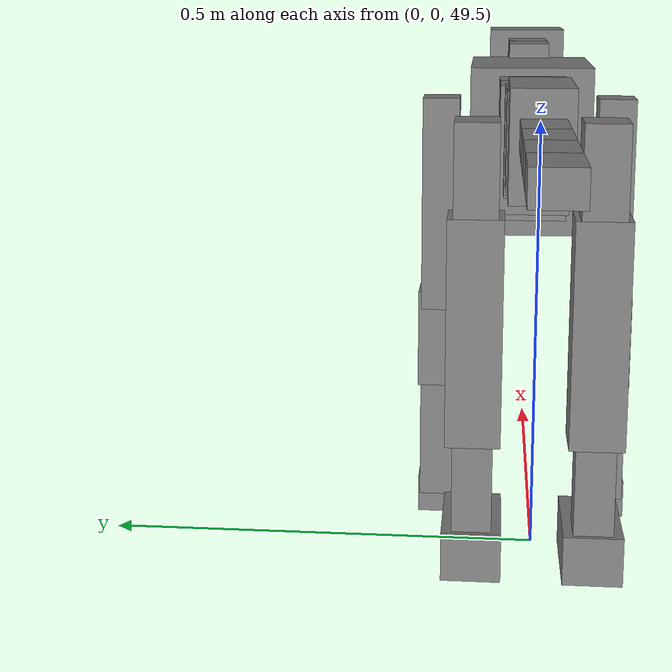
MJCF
<mujoco model="dog">

    <default>
        <joint armature="0.02" stiffness="1" damping="0.2" limited="true"/>
        <geom condim="3" friction="1 0.05 0.05" margin="0.01"/>
        <motor ctrllimited="true" ctrlrange="-1.0 1.0" forcelimited="true" gear="50"/>
    </default>

    <compiler inertiafromgeom="true" angle="radian"/>

    <option timestep="0.016" iterations="50" tolerance="1e-10" solver="Newton" jacobian="dense" cone="pyramidal"/>

    <size nconmax="20000" njmax="60000" nstack="5000000"/>
    <visual>
        <map force="0.1" zfar="30"/>
        <rgba haze="0.15 0.25 0.35 1"/>
        <quality shadowsize="2048"/>
        <global offwidth="800" offheight="800"/>
    </visual>

    <asset>
        <texture type="skybox" builtin="gradient" rgb1="0.3 0.5 0.7" rgb2="0 0 0" width="512" height="512"/>
        <texture name="texplane" type="2d" builtin="checker" rgb1=".2 .3 .4" rgb2=".1 0.15 0.2" width="512" height="512"
                 mark="cross" markrgb=".8 .8 .8"/>
        <texture name="texgeom" type="cube" builtin="flat" mark="cross" width="127" height="1278" rgb1="0.8 0.6 0.4"
                 rgb2="0.8 0.6 0.4" markrgb="1 1 1" random="0.01"/>

        <material name="matplane" reflectance="0.3" texture="texplane" texrepeat="1 1" texuniform="true"/>
        <material name="matgeom" texture="texgeom" texuniform="true" rgba="0.8 0.6 .4 1"/>
    </asset>

    <worldbody>
        <geom name="floor" pos="0 0 0" size="0 0 .25" type="plane" material="matplane" condim="3"/>

        <light directional="false" diffuse=".2 .2 .2" specular="0 0 0" pos="0 0 5" dir="0 0 -1" castshadow="false"/>
        <light mode="targetbodycom" target="torso" directional="false" diffuse=".8 .8 .8" specular="0.3 0.3 0.3"
               pos="0 0 4.0" dir="0 0 -1"/>

        <body name="root" pos="0 0 50">
            <freejoint name="root_1"/>
            <geom type="box" pos="0 0 -0.02" size="0.0774  0.0358  0.063" density="2030"/>

            <body name="spine1" pos="0.054 0 0">
                <joint name="spine1_y" axis="0 1 0" range="0 0.7" limited="true"/>
                <geom type="box" pos="0.02375 0 -0.03" size="0.04375  0.0375  0.05985" density="2030"/>

                <body name="spine2" pos="0.0612 0 0">
                    <joint name="spine2_y" axis="0 1 0" range="-0.15 0.15" limited="true"/>
                    <geom type="box" pos="0.03555  0  -0.04" size="0.04055  0.039  0.06615" density="2030"/>

                    <body name="spine3" pos="0.0730 0 0">
                        <joint name="spine3_y" axis="0 1 0" range="-0.15 0.15" limited="true"/>
                        <geom type="box" pos="0.03555  0  -0.057" size="0.04555  0.0445  0.081" density="2030"/>

                        <body name="spine4" pos="0.0780 0 0">
                            <joint name="spine4_y" axis="0 1 0" range="-0.15 0.15" limited="true"/>
                            <geom type="box" pos="0.05265  0  -0.07" size="0.05265  0.045  0.09135" density="2030"/>

                            <body name="torso" pos="0.1082 0 0">
                                <joint name="torso_y" axis="0 1 0" range="-0.15 0.15" limited="true"/>
                                <geom type="box" pos="0.11925  0  -0.085" size="0.11925  0.085  0.11745"
                                      density="2030"/>

                                <body name="neck1" pos="0.2160  0   0.0180">
                                    <joint name="neck1_y" axis="0 1 0" range="-1.2  -1" limited="true"/>
                                    <geom type="box" pos="0.0423  0  0" size="0.0423  0.03  0.036" density="2325"/>

                                    <body name="neck2" pos="0.0853  0  0">
                                        <joint name="neck2_y" axis="0 1 0" range="0.1  0" limited="true"/>
                                        <geom type="box" pos="0.0423  0  0" size="0.0423  0.03  0.036" density="2325"/>

                                        <body name="head" pos="0.0853  0  0">
                                            <joint name="head_y" axis="0 1 0" range="-0.3  -0.2" limited="true"/>
                                            <geom type="box" pos="0.0531  0  -0.055" size="0.0531  0.06  0.1044"
                                                  density="4030"/>

                                        </body>
                                    </body>
                                </body>

                                <body name="front_shoulder" pos="0.156  0   -0.0480">
                                    <joint name="front_shoulder_y" axis="0 1 0" range="-1 1.5" limited="true"/>
                                    <geom type="box" pos="0 0.13 -0.1349" size="0.0321  0.0274  0.1615" density="1158"/>
                                    <geom type="box" pos="0 -0.13 -0.1349" size="0.0321  0.0274  0.1615"
                                          density="1158"/>

                                    <body name="front_elbow" pos="0  0  -0.2697">
                                        <joint name="front_elbow_y" axis="0 1 0" range="-2 0" limited="true"/>
                                        <geom type="box" pos="0 0.13 -0.0739" size="0.0309  0.0316  0.0739"
                                              density="1081"/>
                                        <geom type="box" pos="0 -0.13 -0.0739" size="0.0309  0.0316  0.0739"
                                              density="1081"/>

                                        <body name="front_wrist" pos="0  0  -0.1479">
                                            <joint name="front_wrist_y" axis="0 1 0" range="-0.2 0" limited="true"/>
                                            <geom type="box" pos="0 0.13 -0.0835" size="0.0249  0.0277  0.0966"
                                                  density="1664"/>
                                            <geom type="box" pos="0 -0.13 -0.0835" size="0.0249  0.0277  0.0966"
                                                  density="1664"/>

                                            <body name="front_finger_end" pos="0  0  -0.1670">
                                                <joint name="front_finger_y" axis="0 1 0" range="-0.4 1"
                                                       limited="true"/>
                                                <geom type="box" pos="0.0298  0.13  -0.0135"
                                                      size="0.0546  0.0298  0.0285" density="1515"/>
                                                <geom type="box" pos="0.0298  -0.13  -0.0135"
                                                      size="0.0546  0.0298  0.0285" density="1515"/>

                                            </body>

                                        </body>
                                    </body>
                                </body>

                            </body>
                        </body>
                    </body>
                </body>
            </body>

            <body name="back_hip" pos="-0.03 0 -0.018">
                <joint name="back_hip_y" axis="0 1 0" range="-1.5 0.3" limited="true"/>
                <geom type="box" pos="0 0.07 -0.0496" size="0.0321  0.0252  0.0724" density="1154"/>
                <geom type="box" pos="0 -0.07 -0.0496" size="0.0321  0.0252  0.0724" density="1154"/>

                <body name="back_knee" pos="0  0  -0.0991">
                    <joint name="back_knee_y" axis="0 1 0" range="0 2.8" limited="true"/>
                    <geom type="box" pos="0 0.07 -0.1159" size="0.0322  0.0317  0.1314" density="1227"/>
                    <geom type="box" pos="0 -0.07 -0.1159" size="0.0322  0.0317  0.1314" density="1227"/>

                    <body name="back_ankle" pos="0  0  -0.2317">
                        <joint name="back_ankle_y" axis="0 1 0" range="-2.2 0" limited="true"/>
                        <geom type="box" pos="0 0.07 -0.0677" size="0.0231  0.0231  0.0790" density="1284"/>
                        <geom type="box" pos="0 -0.07 -0.0677" size="0.0231  0.0231  0.0790" density="1284"/>

                        <body name="back_toe_end" pos="0  0  -0.1354">
                            <joint name="back_toe_y" axis="0 1 0" range="-0.4 1" limited="true"/>
                            <geom type="box" pos="0.0346  0.07  -0.0143" size="0.0634  0.0346  0.0293" density="1515"/>
                            <geom type="box" pos="0.0346  -0.07  -0.0143" size="0.0634  0.0346  0.0293" density="1515"/>

                        </body>
                    </body>
                </body>
            </body>

            <body name="tail1" pos="-0.074 0 -0.006">
                <joint name="tail1_y" axis="0 1 0" range="-0.2 0.2" limited="true"/>
                <geom type="box" pos="-0.0536  0  0" size="0.045  0.025  0.0175" density="1587"/>

                <body name="tail2" pos="-0.09 0 0">
                    <joint name="tail2_y" axis="0 1 0" range="-0.2 0.2" limited="true"/>
                    <geom type="box" pos="-0.0536  0  0" size="0.045  0.025  0.0175" density="1587"/>

                    <body name="tail3" pos="-0.09 0 0">
                        <joint name="tail3_y" axis="0 1 0" range="-0.2 0.2" limited="true"/>
                        <geom type="box" pos="-0.0536  0  0" size="0.045  0.025  0.0175" density="1587"/>

                        <body name="tail4" pos="-0.09 0 0">
                            <joint name="tail4_y" axis="0 1 0" range="-0.2 0.2" limited="true"/>
                            <geom type="box" pos="-0.0536  0  0" size="0.045  0.025  0.0175" density="1587"/>

                        </body>
                    </body>
                </body>
            </body>
        </body>
    </worldbody>

    <actuator>
        <motor joint="spine1_y" forcerange="-150 150     "/>
        <motor joint="spine2_y" forcerange="-150 150     "/>
        <motor joint="spine3_y" forcerange="-150 150     "/>
        <motor joint="spine4_y" forcerange="-150 150     "/>
        <motor joint="torso_y" forcerange="-150 150     "/>
        <motor joint="neck1_y" forcerange="-100 100       "/>
        <motor joint="neck2_y" forcerange="-100 100       "/>
        <motor joint="head_y" forcerange="-150 150       "/>
        <motor joint="front_shoulder_y" forcerange="-167.35 115.39"/>
        <motor joint="front_elbow_y" forcerange="-154.87 174.82"/>
        <motor joint="front_wrist_y" forcerange="-131.57 90.04"/>
        <motor joint="front_finger_y" forcerange="-48.19 70.66"/>
        <motor joint="back_hip_y" forcerange="-313.93 221.83"/>
        <motor joint="back_knee_y" forcerange="-316.38 345.05"/>
        <motor joint="back_angle_y" forcerange="-54.86 214.45"/>
        <motor joint="back_toe_y" forcerange="-95.23 101.42"/>
        <motor joint="tail1_y" forcerange="-50 50     "/>
        <motor joint="tail2_y" forcerange="-50 50     "/>
        <motor joint="tail3_y" forcerange="-50 50     "/>
        <motor joint="tail4_y" forcerange="-50 50     "/>
    </actuator>
</mujoco>
